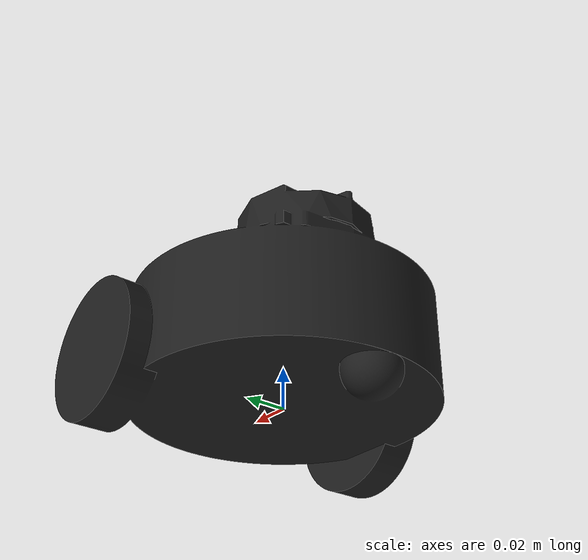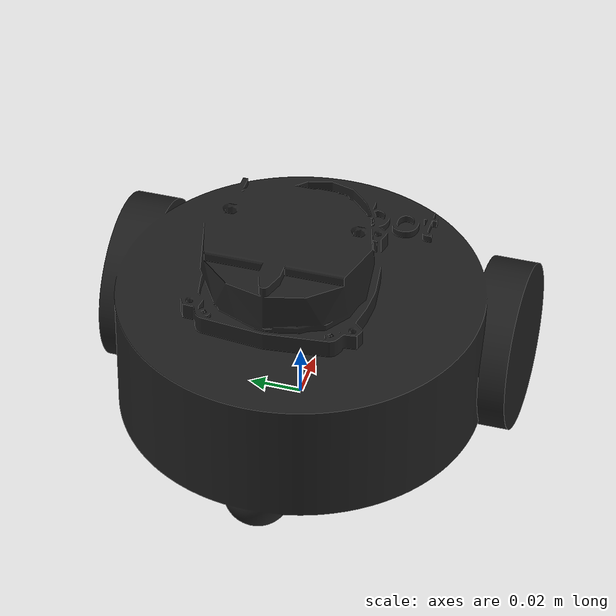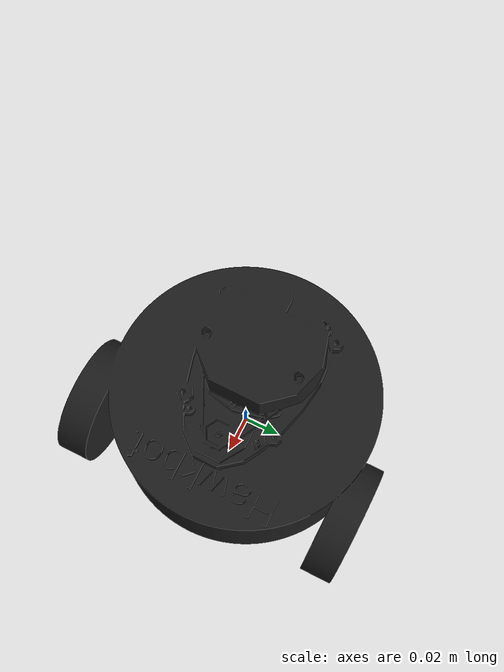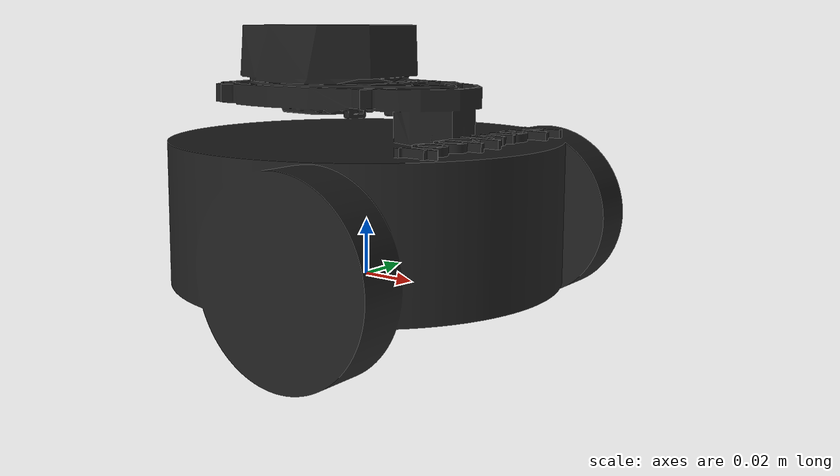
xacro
<?xml version="1.0" ?>
<robot name="hawkbot" xmlns:xacro="http://ros.org/wiki/xacro">
    <xacro:include filename="$(find hawkbot)/model/common_properties.xacro"/>
    <xacro:include filename="$(find hawkbot)/model/hawkbot.gazebo.xacro"/>

    <link name="base_footprint">
        <visual>
            <origin xyz="0 0 0.0" rpy="0 0 0"/>
            <geometry>
                <mesh filename="package://hawkbot/model/hawkbot.stl" scale="0.001 0.001 0.001"/>
            </geometry>
            <material name="light_black"/>
        </visual>
    </link>

</robot>
